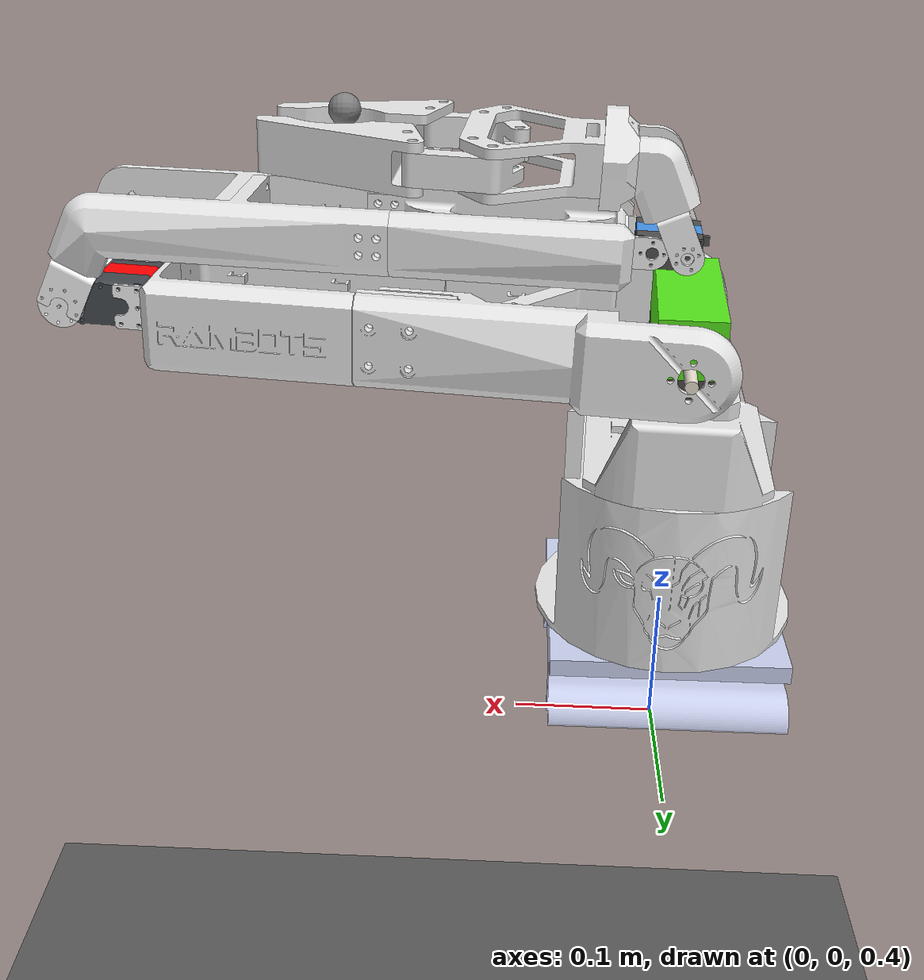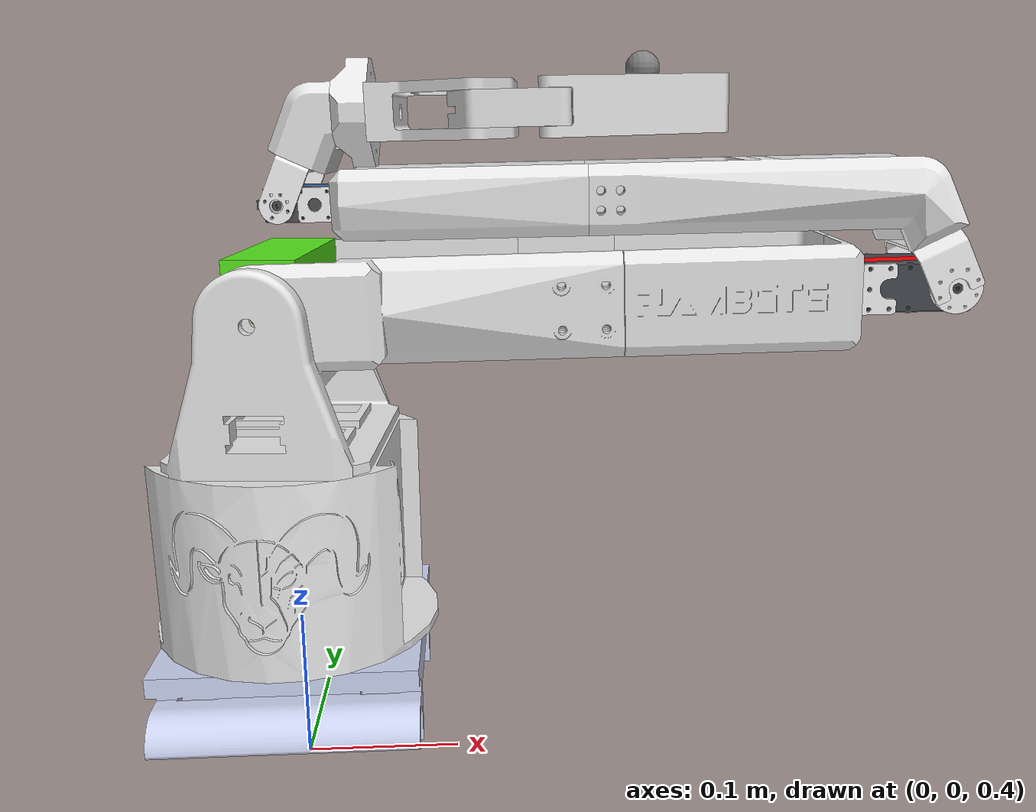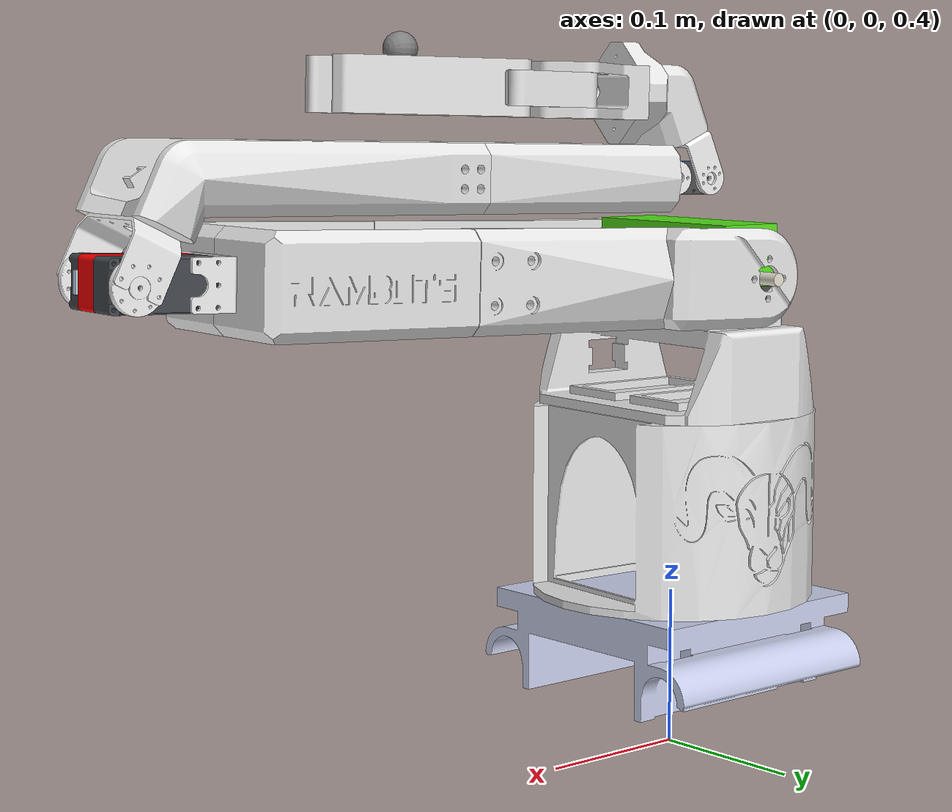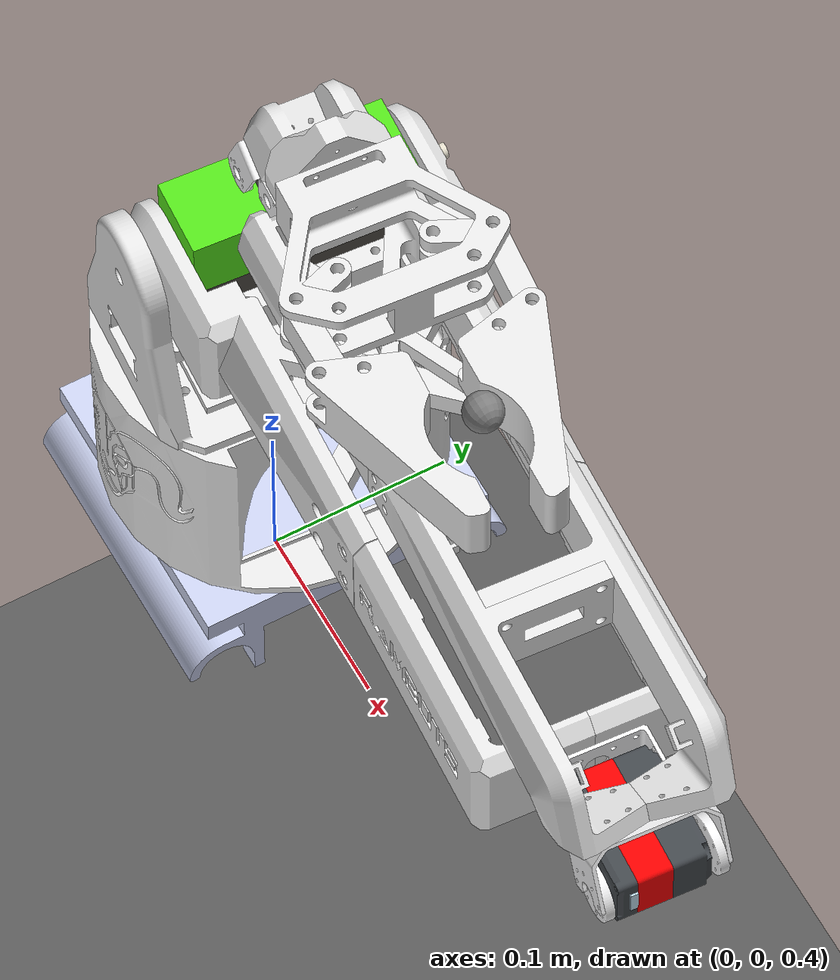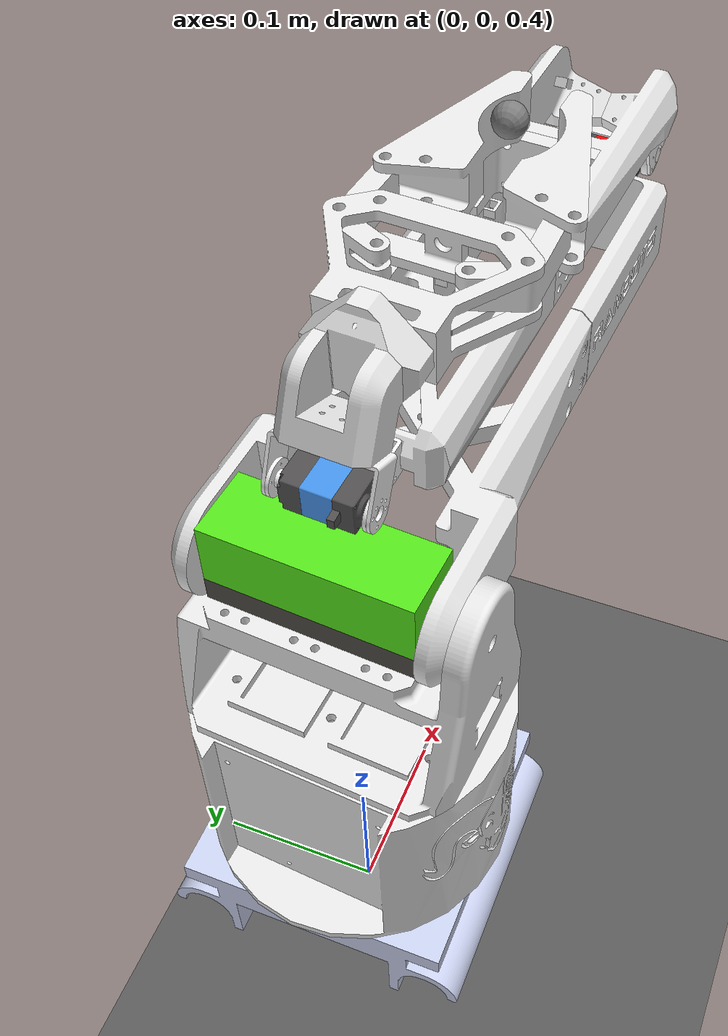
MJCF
<mujoco model="scene">
  <visual>
    <headlight ambient="0.4 0.4 0.4" diffuse="0.8 0.8 0.8" specular="0.1 0.1 0.1"/>
  </visual>

  <asset>
    <texture name="skybox" type="skybox" builtin="gradient"
             rgb1="0.35 0.55 0.65" rgb2="0.1 0.18 0.3"
             width="512" height="512"/>
    <texture name="groundplane" type="2d" builtin="checker"
             rgb1="0.4 0.4 0.4" rgb2="0.3 0.3 0.3"
             width="512" height="512"/>
    <material name="groundplane" texture="groundplane" texrepeat="40 40"/>
  </asset>

  <worldbody>
    <geom name="ground" type="plane" size="5 5 0.1" material="groundplane"/>
    <light pos="0 0 3" dir="0 0 -1" diffuse="0.4 0.4 0.4"/>
  </worldbody>

  <include file="robot.xml"/>
</mujoco>

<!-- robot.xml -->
<mujoco model="C:\Users\jntay\Desktop\Rambot\Code\ArmBOTs\ARM\config">
  <compiler angle="radian"/>
  <contact>
    <exclude body1="robot_base"   body2="link_swivel"/>
  </contact>
  <default>
    <geom contype="0" conaffinity="0"/>
  </default>
  <asset>
    <mesh name="front_base_mount" content_type="model/stl" file="front_base_mount.stl"/>
    <mesh name="part_1" content_type="model/stl" file="part_1.stl"/>
    <mesh name="part_1__2" content_type="model/stl" file="part_1__2.stl"/>
    <mesh name="part_1__3" content_type="model/stl" file="part_1__3.stl"/>
    <mesh name="part_3" content_type="model/stl" file="part_3.stl"/>
    <mesh name="part_2" content_type="model/stl" file="part_2.stl"/>
    <mesh name="part_1__4" content_type="model/stl" file="part_1__4.stl"/>
    <mesh name="part_1__5" content_type="model/stl" file="part_1__5.stl"/>
    <mesh name="part_1__6" content_type="model/stl" file="part_1__6.stl"/>
    <mesh name="part_1__7" content_type="model/stl" file="part_1__7.stl"/>
    <mesh name="support_large_v7" content_type="model/stl" file="support_large_v7.stl"/>
    <mesh name="rds5160_v39" content_type="model/stl" file="rds5160_v39.stl"/>
    <mesh name="rds5160_v39__2" content_type="model/stl" file="rds5160_v39__2.stl"/>
    <mesh name="rds5160_v39__3" content_type="model/stl" file="rds5160_v39__3.stl"/>
    <mesh name="rds5160_v39__4" content_type="model/stl" file="rds5160_v39__4.stl"/>
    <mesh name="part_1__8" content_type="model/stl" file="part_1__8.stl"/>
    <mesh name="part_1__9" content_type="model/stl" file="part_1__9.stl"/>
    <mesh name="wheel_gear_v6" content_type="model/stl" file="wheel_gear_v6.stl"/>
    <mesh name="support_small_v2" content_type="model/stl" file="support_small_v2.stl"/>
    <mesh name="wheel_v5" content_type="model/stl" file="wheel_v5.stl"/>
    <mesh name="rds3235_v9" content_type="model/stl" file="rds3235_v9.stl"/>
    <mesh name="rds3235_v9__2" content_type="model/stl" file="rds3235_v9__2.stl"/>
    <mesh name="part_1__10" content_type="model/stl" file="part_1__10.stl"/>
    <mesh name="rds3235_v9__3" content_type="model/stl" file="rds3235_v9__3.stl"/>
    <mesh name="support_large_2_v8" content_type="model/stl" file="support_large_2_v8.stl"/>
    <mesh name="wheel_gear_v2" content_type="model/stl" file="wheel_gear_v2.stl"/>
    <mesh name="wheel_v1" content_type="model/stl" file="wheel_v1.stl"/>
    <mesh name="support_large_v4" content_type="model/stl" file="support_large_v4.stl"/>
    <mesh name="wristlinkhead1" content_type="model/stl" file="wristlinkhead1.stl"/>
    <mesh name="wristlinkbase1" content_type="model/stl" file="wristlinkbase1.stl"/>
    <mesh name="part5" content_type="model/stl" file="part5.stl"/>
    <mesh name="part4" content_type="model/stl" file="part4.stl"/>
    <mesh name="part5__2" content_type="model/stl" file="part5__2.stl"/>
    <mesh name="part1" content_type="model/stl" file="part1.stl"/>
    <mesh name="part4__2" content_type="model/stl" file="part4__2.stl"/>
  </asset>

  <worldbody>
    <body name="robot_base" pos="0 0 0">
      <geom pos="0.08 0 0.4562582" quat="0.707105 0 0 0.707108" type="mesh" rgba="0.792157 0.819608 0.933333 1" mesh="front_base_mount"/>
      <body name="link_swivel" pos="0 0 0.5" quat="0.999414 0 0 -0.0342397">
        <inertial pos="0.00000137 0.00698643 0.17639635" mass="0.767" fullinertia="0.02668063 0.02569654 0.00172517 0 0 -0.00103232"/>
        <joint name="swivel" pos="0 0 0" axis="0 0 1" range="-6.2832 6.2832" actuatorfrcrange="-0.35 0.35" damping="0.5"/>
        <geom pos="0 -0.0656 0.207" quat="1 0 0 0" type="mesh" rgba="0.901961 0.901961 0.901961 1" mesh="part_1"/>
        <geom type="mesh" rgba="0.901961 0.901961 0.901961 1" mesh="part_1__2"/>
        <geom pos="0 -0.048 0.186" quat="1.32679e-06 0 0 -1" type="mesh" rgba="0.301961 0.290196 0.262745 1" mesh="part_1__3"/>
        <geom pos="0 -0.048 0.186" quat="1.32679e-06 0 0 -1" type="mesh" rgba="0.901961 0.878431 0.811765 1" mesh="part_3"/>
        <geom pos="0 -0.048 0.186" quat="1.32679e-06 0 0 -1" type="mesh" rgba="0.333333 0.894118 0.105882 1" mesh="part_2"/>
        <body name="link_shoulder" pos="0 0.011125 0.207" quat="-0.492387 0.492386 0.507499 0.507499">
          <inertial pos="0.00005988 0.23965704 -0.00063628" mass="0.385" diaginertia="0.02935149 0.00077712 0.02869629"/>
          <joint name="shoulder" pos="0 0 0" axis="0 0 -1" range="0 3.14" ref = "0" actuatorfrcrange="-53.94 53.94" damping="5"/>
          <geom pos="0 0 -0.000155" quat="0.499998 -0.5 -0.5 -0.500002" type="mesh" rgba="0.901961 0.901961 0.901961 1" mesh="part_1__4"/>
          <geom pos="-0.0375 -0.03 0.037655" quat="0.499998 -0.5 -0.5 -0.500002" type="mesh" rgba="0.901961 0.901961 0.901961 1" mesh="part_1__5"/>
          <geom pos="0.00845229 0.151369 -0.053655" quat="0.707105 -0.707108 0 0" type="mesh" rgba="0.901961 0.901961 0.901961 1" mesh="part_1__6"/>
          <geom pos="-0.00845229 0.151369 0.053655" quat="9.38184e-07 9.38187e-07 -0.707108 -0.707105" type="mesh" rgba="0.901961 0.901961 0.901961 1" mesh="part_1__7"/>
          <geom pos="-0.015 0.3405 0.026" quat="0.499998 0.5 0.5 -0.500002" type="mesh" rgba="0.960784 0.960784 0.964706 1" mesh="support_large_v7"/>
          <geom pos="0.0111633 0.381158 0.0177886" quat="0.499998 -0.5 0.5 0.500002" type="mesh" rgba="0.262745 0.282353 0.301961 1" mesh="rds5160_v39"/>
          <geom pos="0.0111633 0.381158 0.0177886" quat="0.499998 -0.5 0.5 0.500002" type="mesh" rgba="0.768627 0.886275 0.952941 1" mesh="rds5160_v39__2"/>
          <geom pos="0.0111633 0.381158 0.0177886" quat="0.499998 -0.5 0.5 0.500002" type="mesh" rgba="0.262745 0.282353 0.301961 1" mesh="rds5160_v39__3"/>
          <geom pos="0.0111633 0.381158 0.0177886" quat="0.499998 -0.5 0.5 0.500002" type="mesh" rgba="1 0 0 1" mesh="rds5160_v39__4"/>
          <body name="link_elbow" pos="0 0.4025 0" quat="0.9771 0 0 -0.212782">
            <inertial pos="0.14675706 -0.18386685 -0.00039635" mass="0.24" fullinertia="0.01133164 0.00609044 0.01700293 0.00791165 0.00001671 -0.00002294"/>
            <joint name="elbow" pos="0 0 0" axis="0 0 1" range="0 4" ref = "0.01" actuatorfrcrange="-15.69 15.69" damping="2.8"/>
            <geom pos="0.131601 -0.149616 0.0362" quat="0.596367 0.379926 0.59637 -0.379928" type="mesh" rgba="0.901961 0.901961 0.901961 1" mesh="part_1__8"/>
            <geom pos="0.033 -0.0025 0.0427" quat="0.499998 0.5 0.5 -0.500002" type="mesh" rgba="0.901961 0.901961 0.901961 1" mesh="part_1__9"/>
            <geom pos="0 0 0.02655" quat="0.194306 0.194306 0.679887 0.679885" type="mesh" rgba="0.960784 0.960784 0.964706 1" mesh="wheel_gear_v6"/>
            <geom pos="0.216841 -0.308752 -0.0003" quat="0.153046 0.690344 0.153046 -0.690347" type="mesh" rgba="0.960784 0.960784 0.964706 1" mesh="support_small_v2"/>
            <geom pos="0 0 -0.02655" quat="0.707105 -0.707108 0 0" type="mesh" rgba="0.960784 0.960784 0.964706 1" mesh="wheel_v5"/>
            <geom pos="0.131601 -0.149616 -0.0368" quat="0.379927 0.596367 -0.379928 0.596369" type="mesh" rgba="0.901961 0.901961 0.901961 1" mesh="part_1__8"/>
            <geom pos="0.222526 -0.320942 -0.0003" quat="0.596367 0.59637 -0.379928 -0.379926" type="mesh" rgba="0.270588 0.572549 0.913725 1" mesh="rds3235_v9"/>
            <geom pos="0.222526 -0.320942 -0.0003" quat="0.596367 0.59637 -0.379928 -0.379926" type="mesh" rgba="0.313725 0.305882 0.305882 1" mesh="rds3235_v9__2"/>
            <geom pos="0.033 -0.0025 -0.0303" quat="0.499998 0.5 0.5 -0.500002" type="mesh" rgba="0.901961 0.901961 0.901961 1" mesh="part_1__10"/>
            <geom pos="0.222526 -0.320942 -0.0003" quat="0.596367 0.59637 -0.379928 -0.379926" type="mesh" rgba="0.313725 0.305882 0.305882 1" mesh="rds3235_v9__3"/>
            <geom pos="0.033 0.015 -0.03355" quat="9.38184e-07 -0.707105 -9.38187e-07 -0.707108" type="mesh" rgba="0.960784 0.960784 0.964706 1" mesh="support_large_2_v8"/>
            <body name="link_wrist" pos="0.218111 -0.335137 -0.0003" quat="0.343937 0 0 0.938993">
              <inertial pos="0.09430937 -0.09761125 -0.00198107" mass="0.426" fullinertia="0.00500876 0.00618009 0.01044809 0.00493217 0.00012665 -0.00010578"/>
              <joint name="wrist" pos="0 0 0" axis="0 0 -1" range="0 4.1" ref = "0.03" actuatorfrcrange="-3.43 3.43" damping="1"/>
              <site name="ee_site" pos="0.16360019 -0.155 0.0" quat="0.148615 0.668225 -0.138768 0.715635" size="0.01"/>
              <geom pos="2.62035e-06 2.2736e-08 0.0265" quat="1.32679e-06 -1 0 0" type="mesh" rgba="0.960784 0.960784 0.964706 1" mesh="wheel_gear_v2"/>
              <geom pos="0 0 -0.0265" quat="0.707105 0 0 -0.707108" type="mesh" rgba="0.960784 0.960784 0.964706 1" mesh="wheel_v1"/>
              <geom pos="-0.00993359 -0.00844969 0" quat="0.707105 0 0.707108 0" type="mesh" rgba="0.960784 0.960784 0.964706 1" mesh="support_large_v4"/>
              <geom pos="-0.0336512 -0.0181757 -0.0172342" quat="9.38184e-07 0.707105 -9.38187e-07 0.707108" type="mesh" rgba="0.901961 0.901961 0.901961 1" mesh="wristlinkhead1"/>
              <geom pos="-0.0336512 -0.0181757 -0.0172342" quat="9.38184e-07 0.707105 -9.38187e-07 0.707108" type="mesh" rgba="0.901961 0.901961 0.901961 1" mesh="wristlinkbase1"/>
              <geom pos="0.0355118 -0.0548151 0.032" quat="1.29534e-06 -0.976296 0.216439 -2.87171e-07" type="mesh" rgba="0.901961 0.901961 0.901961 1" mesh="part5"/>
              <geom pos="0.0355118 -0.0548151 0.032" quat="1.29534e-06 -0.976296 0.216439 -2.87171e-07" type="mesh" rgba="0.901961 0.901961 0.901961 1" mesh="part4"/>
              <geom pos="0.0355118 -0.0548151 0.032" quat="1.29534e-06 -0.976296 0.216439 -2.87171e-07" type="mesh" rgba="0.901961 0.901961 0.901961 1" mesh="part5__2"/>
              <geom pos="0.0355118 -0.0548151 0.032" quat="1.29534e-06 -0.976296 0.216439 -2.87171e-07" type="mesh" rgba="0.901961 0.901961 0.901961 1" mesh="part1"/>
              <geom pos="0.0355118 -0.0548151 0.032" quat="1.29534e-06 -0.976296 0.216439 -2.87171e-07" type="mesh" rgba="0.901961 0.901961 0.901961 1" mesh="part4__2"/>
            </body>
          </body>
        </body>
      </body>
    </body>
  </worldbody>
  <actuator>
    <position joint="swivel" kp="40" ctrlrange="-3.1415 3.1415"/>
    <position joint="shoulder" kp="15" ctrlrange="0 3.14"/>
    <position joint="elbow" kp="9" ctrlrange="0 4"/>
    <position joint="wrist" kp="6" ctrlrange="0 4.1"/>
  </actuator>
  <keyframe>
    <key name="home" qpos="0 0 0 0"/>
  </keyframe>
</mujoco>
